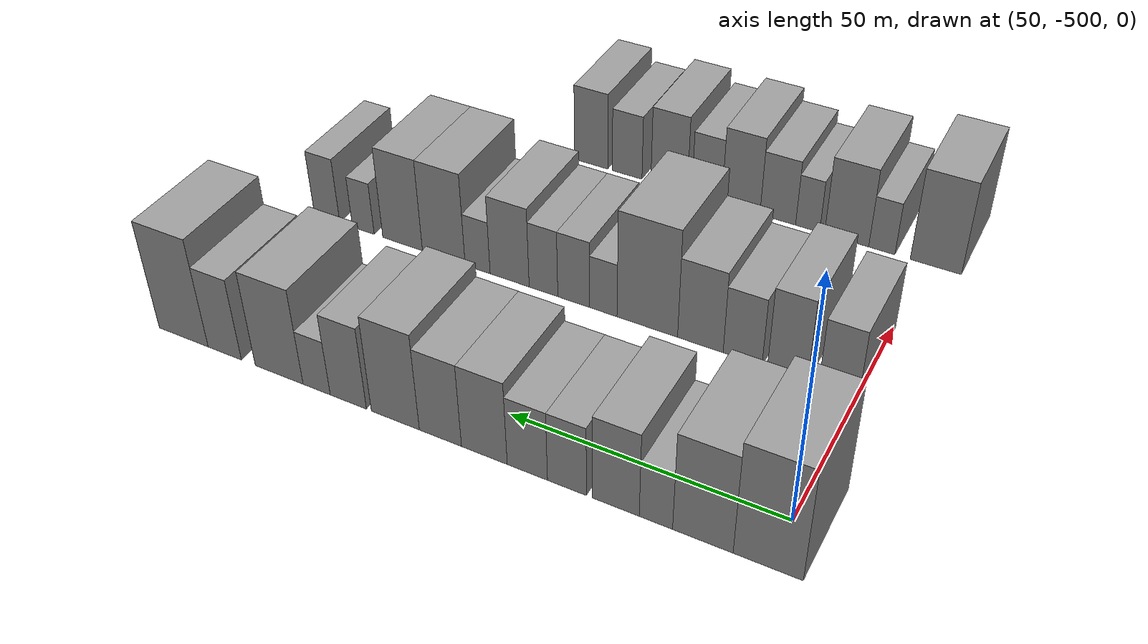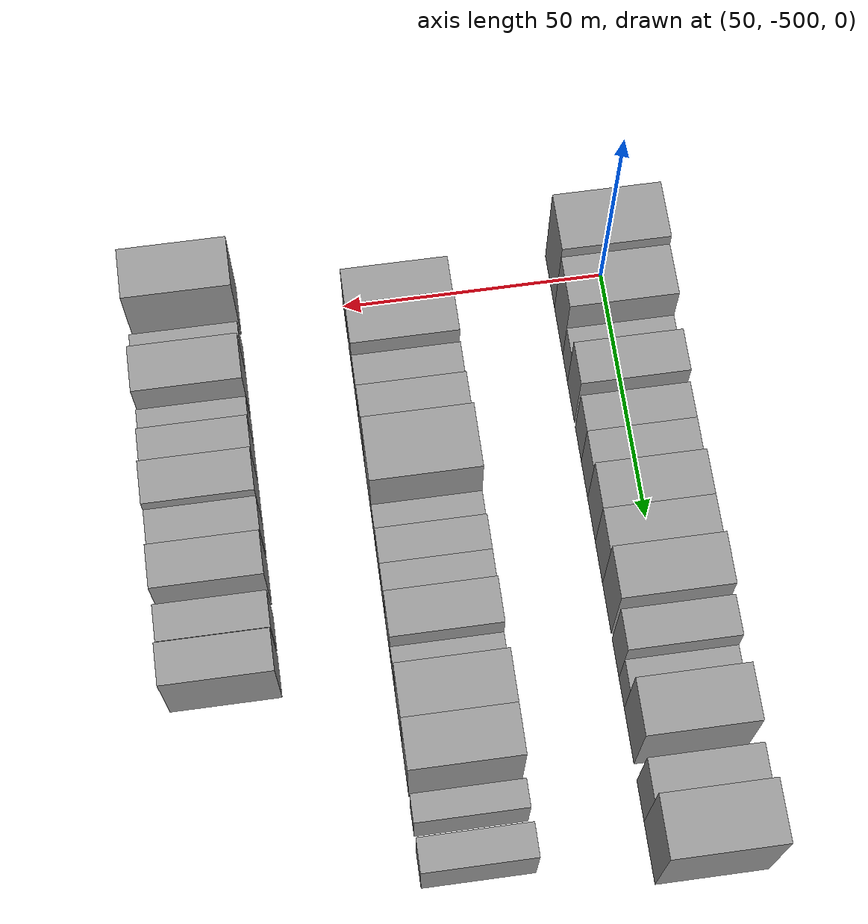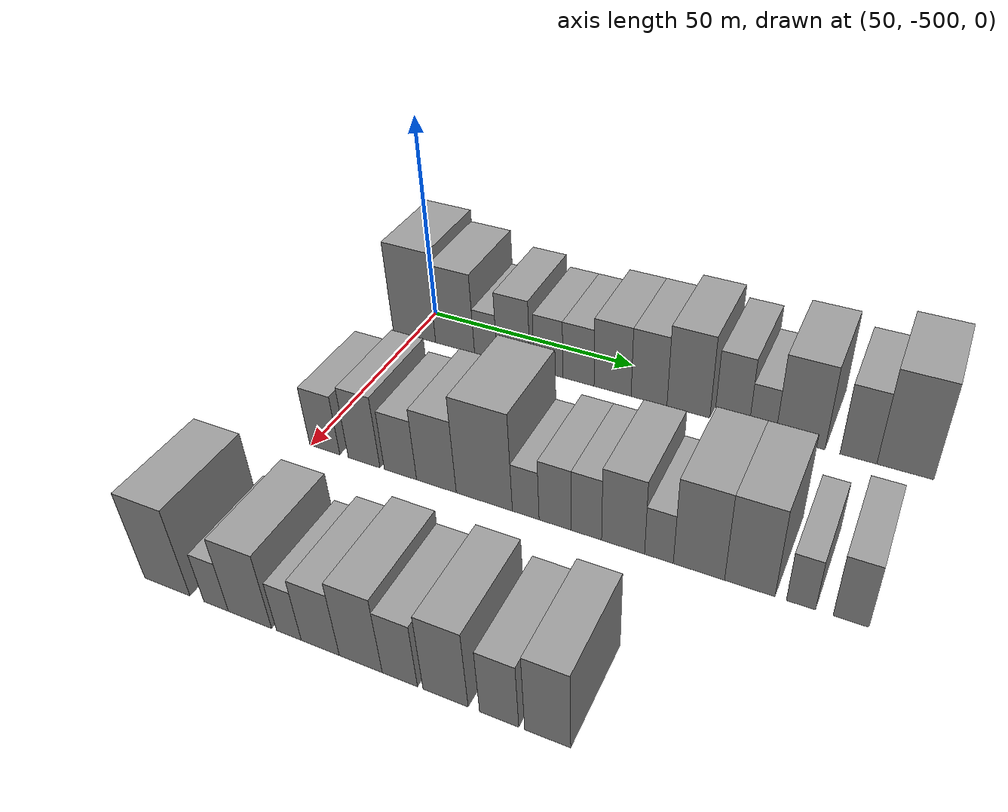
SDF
<sdf version="1.6">
 <world name="default">
  <model name="building_15">
   <static>1</static>
   <pose>50.0000 -499.8959 0 0.000000 0.000000 0.000000</pose>
   <link name="link">
    <pose>0 0 12.00 0 0 0</pose>
    <collision name="collision"><geometry><box><size>20.0000 11.2377 24.0000</size></box></geometry></collision>
    <visual name="visual">
     <cast_shadows>0</cast_shadows>
     <geometry><box><size>20.0000 11.2377 24.0000</size></box></geometry>
     <material>
      <script>
       <uri>model://grey_wall/materials/scripts</uri>
       <uri>model://grey_wall/materials/textures</uri>
       <name>vrc/grey_wall</name>
      </script>
     </material>
    </visual>
   </link>
  </model>
  <model name="building_16">
   <static>1</static>
   <pose>50.0000 -489.2593 0 0.000000 0.000000 0.000000</pose>
   <link name="link">
    <pose>0 0 10.50 0 0 0</pose>
    <collision name="collision"><geometry><box><size>20.0000 10.0355 21.0000</size></box></geometry></collision>
    <visual name="visual">
     <cast_shadows>0</cast_shadows>
     <geometry><box><size>20.0000 10.0355 21.0000</size></box></geometry>
     <material>
      <script>
       <uri>model://grey_wall/materials/scripts</uri>
       <uri>model://grey_wall/materials/textures</uri>
       <name>vrc/grey_wall</name>
      </script>
     </material>
    </visual>
   </link>
  </model>
  <model name="building_17">
   <static>1</static>
   <pose>50.0000 -481.4059 0 0.000000 0.000000 0.000000</pose>
   <link name="link">
    <pose>0 0 6.00 0 0 0</pose>
    <collision name="collision"><geometry><box><size>20.0000 5.6714 12.0000</size></box></geometry></collision>
    <visual name="visual">
     <cast_shadows>0</cast_shadows>
     <geometry><box><size>20.0000 5.6714 12.0000</size></box></geometry>
     <material>
      <script>
       <uri>model://grey_wall/materials/scripts</uri>
       <uri>model://grey_wall/materials/textures</uri>
       <name>vrc/grey_wall</name>
      </script>
     </material>
    </visual>
   </link>
  </model>
  <model name="building_18">
   <static>1</static>
   <pose>50.0000 -474.4728 0 0.000000 0.000000 0.000000</pose>
   <link name="link">
    <pose>0 0 9.00 0 0 0</pose>
    <collision name="collision"><geometry><box><size>20.0000 8.1948 18.0000</size></box></geometry></collision>
    <visual name="visual">
     <cast_shadows>0</cast_shadows>
     <geometry><box><size>20.0000 8.1948 18.0000</size></box></geometry>
     <material>
      <script>
       <uri>model://grey_wall/materials/scripts</uri>
       <uri>model://grey_wall/materials/textures</uri>
       <name>vrc/grey_wall</name>
      </script>
     </material>
    </visual>
   </link>
  </model>
  <model name="building_19">
   <static>1</static>
   <pose>50.0000 -465.8986 0 0.000000 0.000000 0.000000</pose>
   <link name="link">
    <pose>0 0 7.50 0 0 0</pose>
    <collision name="collision"><geometry><box><size>20.0000 6.9536 15.0000</size></box></geometry></collision>
    <visual name="visual">
     <cast_shadows>0</cast_shadows>
     <geometry><box><size>20.0000 6.9536 15.0000</size></box></geometry>
     <material>
      <script>
       <uri>model://grey_wall/materials/scripts</uri>
       <uri>model://grey_wall/materials/textures</uri>
       <name>vrc/grey_wall</name>
      </script>
     </material>
    </visual>
   </link>
  </model>
  <model name="building_20">
   <static>1</static>
   <pose>50.0000 -458.7400 0 0.000000 0.000000 0.000000</pose>
   <link name="link">
    <pose>0 0 7.50 0 0 0</pose>
    <collision name="collision"><geometry><box><size>20.0000 7.3635 15.0000</size></box></geometry></collision>
    <visual name="visual">
     <cast_shadows>0</cast_shadows>
     <geometry><box><size>20.0000 7.3635 15.0000</size></box></geometry>
     <material>
      <script>
       <uri>model://grey_wall/materials/scripts</uri>
       <uri>model://grey_wall/materials/textures</uri>
       <name>vrc/grey_wall</name>
      </script>
     </material>
    </visual>
   </link>
  </model>
  <model name="building_21">
   <static>1</static>
   <pose>50.0000 -450.7693 0 0.000000 0.000000 0.000000</pose>
   <link name="link">
    <pose>0 0 9.00 0 0 0</pose>
    <collision name="collision"><geometry><box><size>20.0000 8.5780 18.0000</size></box></geometry></collision>
    <visual name="visual">
     <cast_shadows>0</cast_shadows>
     <geometry><box><size>20.0000 8.5780 18.0000</size></box></geometry>
     <material>
      <script>
       <uri>model://grey_wall/materials/scripts</uri>
       <uri>model://grey_wall/materials/textures</uri>
       <name>vrc/grey_wall</name>
      </script>
     </material>
    </visual>
   </link>
  </model>
  <model name="building_22">
   <static>1</static>
   <pose>50.0000 -442.4271 0 0.000000 0.000000 0.000000</pose>
   <link name="link">
    <pose>0 0 9.00 0 0 0</pose>
    <collision name="collision"><geometry><box><size>20.0000 8.1065 18.0000</size></box></geometry></collision>
    <visual name="visual">
     <cast_shadows>0</cast_shadows>
     <geometry><box><size>20.0000 8.1065 18.0000</size></box></geometry>
     <material>
      <script>
       <uri>model://grey_wall/materials/scripts</uri>
       <uri>model://grey_wall/materials/textures</uri>
       <name>vrc/grey_wall</name>
      </script>
     </material>
    </visual>
   </link>
  </model>
  <model name="building_23">
   <static>1</static>
   <pose>50.0000 -433.6353 0 0.000000 0.000000 0.000000</pose>
   <link name="link">
    <pose>0 0 10.50 0 0 0</pose>
    <collision name="collision"><geometry><box><size>20.0000 9.4771 21.0000</size></box></geometry></collision>
    <visual name="visual">
     <cast_shadows>0</cast_shadows>
     <geometry><box><size>20.0000 9.4771 21.0000</size></box></geometry>
     <material>
      <script>
       <uri>model://grey_wall/materials/scripts</uri>
       <uri>model://grey_wall/materials/textures</uri>
       <name>vrc/grey_wall</name>
      </script>
     </material>
    </visual>
   </link>
  </model>
  <model name="building_24">
   <static>1</static>
   <pose>50.0000 -424.2158 0 0.000000 0.000000 0.000000</pose>
   <link name="link">
    <pose>0 0 9.00 0 0 0</pose>
    <collision name="collision"><geometry><box><size>20.0000 7.3619 18.0000</size></box></geometry></collision>
    <visual name="visual">
     <cast_shadows>0</cast_shadows>
     <geometry><box><size>20.0000 7.3619 18.0000</size></box></geometry>
     <material>
      <script>
       <uri>model://grey_wall/materials/scripts</uri>
       <uri>model://grey_wall/materials/textures</uri>
       <name>vrc/grey_wall</name>
      </script>
     </material>
    </visual>
   </link>
  </model>
  <model name="building_25">
   <static>1</static>
   <pose>50.0000 -417.7162 0 0.000000 0.000000 0.000000</pose>
   <link name="link">
    <pose>0 0 6.00 0 0 0</pose>
    <collision name="collision"><geometry><box><size>20.0000 5.6374 12.0000</size></box></geometry></collision>
    <visual name="visual">
     <cast_shadows>0</cast_shadows>
     <geometry><box><size>20.0000 5.6374 12.0000</size></box></geometry>
     <material>
      <script>
       <uri>model://grey_wall/materials/scripts</uri>
       <uri>model://grey_wall/materials/textures</uri>
       <name>vrc/grey_wall</name>
      </script>
     </material>
    </visual>
   </link>
  </model>
  <model name="building_26">
   <static>1</static>
   <pose>50.0000 -409.8251 0 0.000000 0.000000 0.000000</pose>
   <link name="link">
    <pose>0 0 10.50 0 0 0</pose>
    <collision name="collision"><geometry><box><size>20.0000 10.1448 21.0000</size></box></geometry></collision>
    <visual name="visual">
     <cast_shadows>0</cast_shadows>
     <geometry><box><size>20.0000 10.1448 21.0000</size></box></geometry>
     <material>
      <script>
       <uri>model://grey_wall/materials/scripts</uri>
       <uri>model://grey_wall/materials/textures</uri>
       <name>vrc/grey_wall</name>
      </script>
     </material>
    </visual>
   </link>
  </model>
  <model name="building_27">
   <static>1</static>
   <pose>50.0000 -398.0976 0 0.000000 0.000000 0.000000</pose>
   <link name="link">
    <pose>0 0 9.00 0 0 0</pose>
    <collision name="collision"><geometry><box><size>20.0000 7.3101 18.0000</size></box></geometry></collision>
    <visual name="visual">
     <cast_shadows>0</cast_shadows>
     <geometry><box><size>20.0000 7.3101 18.0000</size></box></geometry>
     <material>
      <script>
       <uri>model://grey_wall/materials/scripts</uri>
       <uri>model://grey_wall/materials/textures</uri>
       <name>vrc/grey_wall</name>
      </script>
     </material>
    </visual>
   </link>
  </model>
  <model name="building_28">
   <static>1</static>
   <pose>50.0000 -388.9482 0 0.000000 0.000000 0.000000</pose>
   <link name="link">
    <pose>0 0 12.00 0 0 0</pose>
    <collision name="collision"><geometry><box><size>20.0000 10.9887 24.0000</size></box></geometry></collision>
    <visual name="visual">
     <cast_shadows>0</cast_shadows>
     <geometry><box><size>20.0000 10.9887 24.0000</size></box></geometry>
     <material>
      <script>
       <uri>model://grey_wall/materials/scripts</uri>
       <uri>model://grey_wall/materials/textures</uri>
       <name>vrc/grey_wall</name>
      </script>
     </material>
    </visual>
   </link>
  </model>
  <model name="building_158">
   <static>1</static>
   <pose>90.0000 -496.8091 0 0.000000 0.000000 0.000000</pose>
   <link name="link">
    <pose>0 0 7.50 0 0 0</pose>
    <collision name="collision"><geometry><box><size>20.0000 7.1692 15.0000</size></box></geometry></collision>
    <visual name="visual">
     <cast_shadows>0</cast_shadows>
     <geometry><box><size>20.0000 7.1692 15.0000</size></box></geometry>
     <material>
      <script>
       <uri>model://grey_wall/materials/scripts</uri>
       <uri>model://grey_wall/materials/textures</uri>
       <name>vrc/grey_wall</name>
      </script>
     </material>
    </visual>
   </link>
  </model>
  <model name="building_159">
   <static>1</static>
   <pose>90.0000 -487.5349 0 0.000000 0.000000 0.000000</pose>
   <link name="link">
    <pose>0 0 9.00 0 0 0</pose>
    <collision name="collision"><geometry><box><size>20.0000 7.3791 18.0000</size></box></geometry></collision>
    <visual name="visual">
     <cast_shadows>0</cast_shadows>
     <geometry><box><size>20.0000 7.3791 18.0000</size></box></geometry>
     <material>
      <script>
       <uri>model://grey_wall/materials/scripts</uri>
       <uri>model://grey_wall/materials/textures</uri>
       <name>vrc/grey_wall</name>
      </script>
     </material>
    </visual>
   </link>
  </model>
  <model name="building_160">
   <static>1</static>
   <pose>90.0000 -479.1978 0 0.000000 0.000000 0.000000</pose>
   <link name="link">
    <pose>0 0 7.50 0 0 0</pose>
    <collision name="collision"><geometry><box><size>20.0000 7.2951 15.0000</size></box></geometry></collision>
    <visual name="visual">
     <cast_shadows>0</cast_shadows>
     <geometry><box><size>20.0000 7.2951 15.0000</size></box></geometry>
     <material>
      <script>
       <uri>model://grey_wall/materials/scripts</uri>
       <uri>model://grey_wall/materials/textures</uri>
       <name>vrc/grey_wall</name>
      </script>
     </material>
    </visual>
   </link>
  </model>
  <model name="building_161">
   <static>1</static>
   <pose>90.0000 -471.1731 0 0.000000 0.000000 0.000000</pose>
   <link name="link">
    <pose>0 0 9.00 0 0 0</pose>
    <collision name="collision"><geometry><box><size>20.0000 8.7544 18.0000</size></box></geometry></collision>
    <visual name="visual">
     <cast_shadows>0</cast_shadows>
     <geometry><box><size>20.0000 8.7544 18.0000</size></box></geometry>
     <material>
      <script>
       <uri>model://grey_wall/materials/scripts</uri>
       <uri>model://grey_wall/materials/textures</uri>
       <name>vrc/grey_wall</name>
      </script>
     </material>
    </visual>
   </link>
  </model>
  <model name="building_162">
   <static>1</static>
   <pose>90.0000 -460.7985 0 0.000000 0.000000 0.000000</pose>
   <link name="link">
    <pose>0 0 12.00 0 0 0</pose>
    <collision name="collision"><geometry><box><size>20.0000 11.9949 24.0000</size></box></geometry></collision>
    <visual name="visual">
     <cast_shadows>0</cast_shadows>
     <geometry><box><size>20.0000 11.9949 24.0000</size></box></geometry>
     <material>
      <script>
       <uri>model://grey_wall/materials/scripts</uri>
       <uri>model://grey_wall/materials/textures</uri>
       <name>vrc/grey_wall</name>
      </script>
     </material>
    </visual>
   </link>
  </model>
  <model name="building_163">
   <static>1</static>
   <pose>90.0000 -452.0313 0 0.000000 0.000000 0.000000</pose>
   <link name="link">
    <pose>0 0 6.00 0 0 0</pose>
    <collision name="collision"><geometry><box><size>20.0000 5.5394 12.0000</size></box></geometry></collision>
    <visual name="visual">
     <cast_shadows>0</cast_shadows>
     <geometry><box><size>20.0000 5.5394 12.0000</size></box></geometry>
     <material>
      <script>
       <uri>model://grey_wall/materials/scripts</uri>
       <uri>model://grey_wall/materials/textures</uri>
       <name>vrc/grey_wall</name>
      </script>
     </material>
    </visual>
   </link>
  </model>
  <model name="building_164">
   <static>1</static>
   <pose>90.0000 -445.9774 0 0.000000 0.000000 0.000000</pose>
   <link name="link">
    <pose>0 0 7.50 0 0 0</pose>
    <collision name="collision"><geometry><box><size>20.0000 6.5683 15.0000</size></box></geometry></collision>
    <visual name="visual">
     <cast_shadows>0</cast_shadows>
     <geometry><box><size>20.0000 6.5683 15.0000</size></box></geometry>
     <material>
      <script>
       <uri>model://grey_wall/materials/scripts</uri>
       <uri>model://grey_wall/materials/textures</uri>
       <name>vrc/grey_wall</name>
      </script>
     </material>
    </visual>
   </link>
  </model>
  <model name="building_165">
   <static>1</static>
   <pose>90.0000 -439.6885 0 0.000000 0.000000 0.000000</pose>
   <link name="link">
    <pose>0 0 7.50 0 0 0</pose>
    <collision name="collision"><geometry><box><size>20.0000 6.0095 15.0000</size></box></geometry></collision>
    <visual name="visual">
     <cast_shadows>0</cast_shadows>
     <geometry><box><size>20.0000 6.0095 15.0000</size></box></geometry>
     <material>
      <script>
       <uri>model://grey_wall/materials/scripts</uri>
       <uri>model://grey_wall/materials/textures</uri>
       <name>vrc/grey_wall</name>
      </script>
     </material>
    </visual>
   </link>
  </model>
  <model name="building_166">
   <static>1</static>
   <pose>90.0000 -432.5055 0 0.000000 0.000000 0.000000</pose>
   <link name="link">
    <pose>0 0 9.00 0 0 0</pose>
    <collision name="collision"><geometry><box><size>20.0000 8.3567 18.0000</size></box></geometry></collision>
    <visual name="visual">
     <cast_shadows>0</cast_shadows>
     <geometry><box><size>20.0000 8.3567 18.0000</size></box></geometry>
     <material>
      <script>
       <uri>model://grey_wall/materials/scripts</uri>
       <uri>model://grey_wall/materials/textures</uri>
       <name>vrc/grey_wall</name>
      </script>
     </material>
    </visual>
   </link>
  </model>
  <model name="building_167">
   <static>1</static>
   <pose>90.0000 -425.6043 0 0.000000 0.000000 0.000000</pose>
   <link name="link">
    <pose>0 0 6.00 0 0 0</pose>
    <collision name="collision"><geometry><box><size>20.0000 5.4456 12.0000</size></box></geometry></collision>
    <visual name="visual">
     <cast_shadows>0</cast_shadows>
     <geometry><box><size>20.0000 5.4456 12.0000</size></box></geometry>
     <material>
      <script>
       <uri>model://grey_wall/materials/scripts</uri>
       <uri>model://grey_wall/materials/textures</uri>
       <name>vrc/grey_wall</name>
      </script>
     </material>
    </visual>
   </link>
  </model>
  <model name="building_168">
   <static>1</static>
   <pose>90.0000 -418.1313 0 0.000000 0.000000 0.000000</pose>
   <link name="link">
    <pose>0 0 10.50 0 0 0</pose>
    <collision name="collision"><geometry><box><size>20.0000 9.5003 21.0000</size></box></geometry></collision>
    <visual name="visual">
     <cast_shadows>0</cast_shadows>
     <geometry><box><size>20.0000 9.5003 21.0000</size></box></geometry>
     <material>
      <script>
       <uri>model://grey_wall/materials/scripts</uri>
       <uri>model://grey_wall/materials/textures</uri>
       <name>vrc/grey_wall</name>
      </script>
     </material>
    </visual>
   </link>
  </model>
  <model name="building_169">
   <static>1</static>
   <pose>90.0000 -408.8623 0 0.000000 0.000000 0.000000</pose>
   <link name="link">
    <pose>0 0 10.50 0 0 0</pose>
    <collision name="collision"><geometry><box><size>20.0000 9.0377 21.0000</size></box></geometry></collision>
    <visual name="visual">
     <cast_shadows>0</cast_shadows>
     <geometry><box><size>20.0000 9.0377 21.0000</size></box></geometry>
     <material>
      <script>
       <uri>model://grey_wall/materials/scripts</uri>
       <uri>model://grey_wall/materials/textures</uri>
       <name>vrc/grey_wall</name>
      </script>
     </material>
    </visual>
   </link>
  </model>
  <model name="building_170">
   <static>1</static>
   <pose>90.0000 -399.8133 0 0.000000 0.000000 0.000000</pose>
   <link name="link">
    <pose>0 0 6.00 0 0 0</pose>
    <collision name="collision"><geometry><box><size>20.0000 5.0603 12.0000</size></box></geometry></collision>
    <visual name="visual">
     <cast_shadows>0</cast_shadows>
     <geometry><box><size>20.0000 5.0603 12.0000</size></box></geometry>
     <material>
      <script>
       <uri>model://grey_wall/materials/scripts</uri>
       <uri>model://grey_wall/materials/textures</uri>
       <name>vrc/grey_wall</name>
      </script>
     </material>
    </visual>
   </link>
  </model>
  <model name="building_171">
   <static>1</static>
   <pose>90.0000 -391.2618 0 0.000000 0.000000 0.000000</pose>
   <link name="link">
    <pose>0 0 7.50 0 0 0</pose>
    <collision name="collision"><geometry><box><size>20.0000 6.0428 15.0000</size></box></geometry></collision>
    <visual name="visual">
     <cast_shadows>0</cast_shadows>
     <geometry><box><size>20.0000 6.0428 15.0000</size></box></geometry>
     <material>
      <script>
       <uri>model://grey_wall/materials/scripts</uri>
       <uri>model://grey_wall/materials/textures</uri>
       <name>vrc/grey_wall</name>
      </script>
     </material>
    </visual>
   </link>
  </model>
  <model name="building_294">
   <static>1</static>
   <pose>130.0000 -501.8209 0 0.000000 0.000000 0.000000</pose>
   <link name="link">
    <pose>0 0 10.50 0 0 0</pose>
    <collision name="collision"><geometry><box><size>20.0000 9.9045 21.0000</size></box></geometry></collision>
    <visual name="visual">
     <cast_shadows>0</cast_shadows>
     <geometry><box><size>20.0000 9.9045 21.0000</size></box></geometry>
     <material>
      <script>
       <uri>model://grey_wall/materials/scripts</uri>
       <uri>model://grey_wall/materials/textures</uri>
       <name>vrc/grey_wall</name>
      </script>
     </material>
    </visual>
   </link>
  </model>
  <model name="building_295">
   <static>1</static>
   <pose>130.0000 -491.2690 0 0.000000 0.000000 0.000000</pose>
   <link name="link">
    <pose>0 0 6.00 0 0 0</pose>
    <collision name="collision"><geometry><box><size>20.0000 5.1993 12.0000</size></box></geometry></collision>
    <visual name="visual">
     <cast_shadows>0</cast_shadows>
     <geometry><box><size>20.0000 5.1993 12.0000</size></box></geometry>
     <material>
      <script>
       <uri>model://grey_wall/materials/scripts</uri>
       <uri>model://grey_wall/materials/textures</uri>
       <name>vrc/grey_wall</name>
      </script>
     </material>
    </visual>
   </link>
  </model>
  <model name="building_296">
   <static>1</static>
   <pose>130.0000 -484.2086 0 0.000000 0.000000 0.000000</pose>
   <link name="link">
    <pose>0 0 9.00 0 0 0</pose>
    <collision name="collision"><geometry><box><size>20.0000 8.9215 18.0000</size></box></geometry></collision>
    <visual name="visual">
     <cast_shadows>0</cast_shadows>
     <geometry><box><size>20.0000 8.9215 18.0000</size></box></geometry>
     <material>
      <script>
       <uri>model://grey_wall/materials/scripts</uri>
       <uri>model://grey_wall/materials/textures</uri>
       <name>vrc/grey_wall</name>
      </script>
     </material>
    </visual>
   </link>
  </model>
  <model name="building_297">
   <static>1</static>
   <pose>130.0000 -476.2665 0 0.000000 0.000000 0.000000</pose>
   <link name="link">
    <pose>0 0 6.00 0 0 0</pose>
    <collision name="collision"><geometry><box><size>20.0000 4.9625 12.0000</size></box></geometry></collision>
    <visual name="visual">
     <cast_shadows>0</cast_shadows>
     <geometry><box><size>20.0000 4.9625 12.0000</size></box></geometry>
     <material>
      <script>
       <uri>model://grey_wall/materials/scripts</uri>
       <uri>model://grey_wall/materials/textures</uri>
       <name>vrc/grey_wall</name>
      </script>
     </material>
    </visual>
   </link>
  </model>
  <model name="building_298">
   <static>1</static>
   <pose>130.0000 -470.0543 0 0.000000 0.000000 0.000000</pose>
   <link name="link">
    <pose>0 0 7.50 0 0 0</pose>
    <collision name="collision"><geometry><box><size>20.0000 7.4619 15.0000</size></box></geometry></collision>
    <visual name="visual">
     <cast_shadows>0</cast_shadows>
     <geometry><box><size>20.0000 7.4619 15.0000</size></box></geometry>
     <material>
      <script>
       <uri>model://grey_wall/materials/scripts</uri>
       <uri>model://grey_wall/materials/textures</uri>
       <name>vrc/grey_wall</name>
      </script>
     </material>
    </visual>
   </link>
  </model>
  <model name="building_299">
   <static>1</static>
   <pose>130.0000 -462.2434 0 0.000000 0.000000 0.000000</pose>
   <link name="link">
    <pose>0 0 9.00 0 0 0</pose>
    <collision name="collision"><geometry><box><size>20.0000 8.1600 18.0000</size></box></geometry></collision>
    <visual name="visual">
     <cast_shadows>0</cast_shadows>
     <geometry><box><size>20.0000 8.1600 18.0000</size></box></geometry>
     <material>
      <script>
       <uri>model://grey_wall/materials/scripts</uri>
       <uri>model://grey_wall/materials/textures</uri>
       <name>vrc/grey_wall</name>
      </script>
     </material>
    </visual>
   </link>
  </model>
  <model name="building_300">
   <static>1</static>
   <pose>130.0000 -454.8946 0 0.000000 0.000000 0.000000</pose>
   <link name="link">
    <pose>0 0 7.50 0 0 0</pose>
    <collision name="collision"><geometry><box><size>20.0000 6.5376 15.0000</size></box></geometry></collision>
    <visual name="visual">
     <cast_shadows>0</cast_shadows>
     <geometry><box><size>20.0000 6.5376 15.0000</size></box></geometry>
     <material>
      <script>
       <uri>model://grey_wall/materials/scripts</uri>
       <uri>model://grey_wall/materials/textures</uri>
       <name>vrc/grey_wall</name>
      </script>
     </material>
    </visual>
   </link>
  </model>
  <model name="building_301">
   <static>1</static>
   <pose>130.0000 -446.5856 0 0.000000 0.000000 0.000000</pose>
   <link name="link">
    <pose>0 0 9.00 0 0 0</pose>
    <collision name="collision"><geometry><box><size>20.0000 8.0802 18.0000</size></box></geometry></collision>
    <visual name="visual">
     <cast_shadows>0</cast_shadows>
     <geometry><box><size>20.0000 8.0802 18.0000</size></box></geometry>
     <material>
      <script>
       <uri>model://grey_wall/materials/scripts</uri>
       <uri>model://grey_wall/materials/textures</uri>
       <name>vrc/grey_wall</name>
      </script>
     </material>
    </visual>
   </link>
  </model>
  <model name="building_302">
   <static>1</static>
   <pose>130.0000 -437.1595 0 0.000000 0.000000 0.000000</pose>
   <link name="link">
    <pose>0 0 7.50 0 0 0</pose>
    <collision name="collision"><geometry><box><size>20.0000 6.7720 15.0000</size></box></geometry></collision>
    <visual name="visual">
     <cast_shadows>0</cast_shadows>
     <geometry><box><size>20.0000 6.7720 15.0000</size></box></geometry>
     <material>
      <script>
       <uri>model://grey_wall/materials/scripts</uri>
       <uri>model://grey_wall/materials/textures</uri>
       <name>vrc/grey_wall</name>
      </script>
     </material>
    </visual>
   </link>
  </model>
  <model name="building_303">
   <static>1</static>
   <pose>130.0000 -428.9290 0 0.000000 0.000000 0.000000</pose>
   <link name="link">
    <pose>0 0 9.00 0 0 0</pose>
    <collision name="collision"><geometry><box><size>20.0000 7.6891 18.0000</size></box></geometry></collision>
    <visual name="visual">
     <cast_shadows>0</cast_shadows>
     <geometry><box><size>20.0000 7.6891 18.0000</size></box></geometry>
     <material>
      <script>
       <uri>model://grey_wall/materials/scripts</uri>
       <uri>model://grey_wall/materials/textures</uri>
       <name>vrc/grey_wall</name>
      </script>
     </material>
    </visual>
   </link>
  </model>
 </world>
</sdf>
